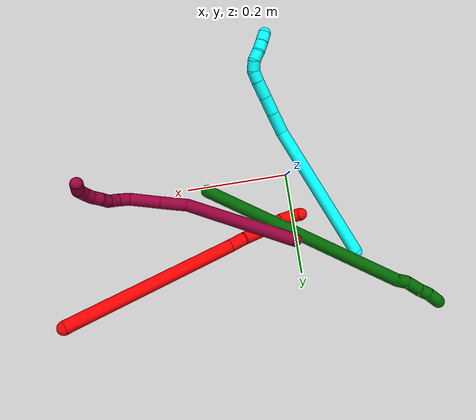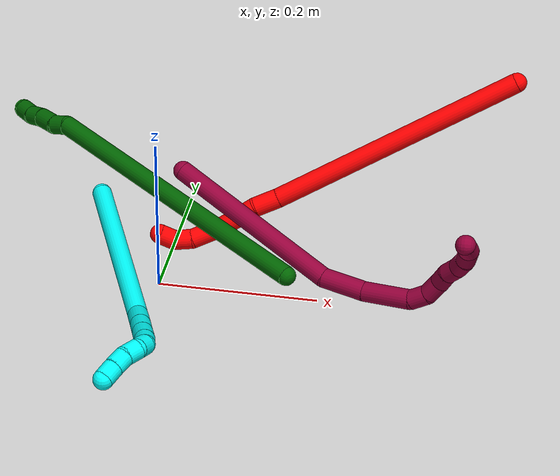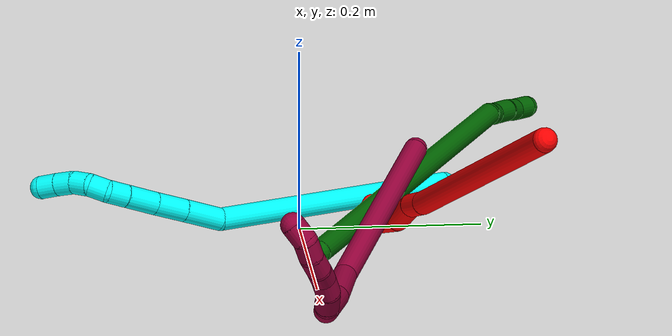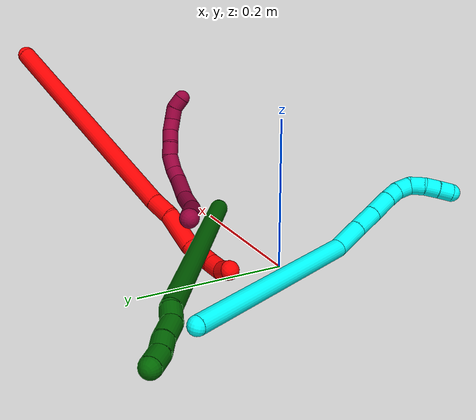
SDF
<sdf version="1.7">
 <world name="default">
  <model name="2">
   <static>0</static>
   <link name="2">
    <collision name="collision-cylinder-e_1_1_4">
     <pose>-0.010719 0.005513 -0.166262 -3.10844 -0.064348 2.19041</pose>
     <geometry><cylinder><radius>0.0125</radius><length>0.333398</length></cylinder></geometry>
     <surface>
      <friction><ode><mu>1.16</mu><mu2>1.16</mu2><slip1>0</slip1><slip2>0</slip2></ode></friction>
      <contact><ode><kp>1e+06</kp><kd>1</kd><max_vel>0</max_vel><min_depth>0.001</min_depth></ode></contact>
     </surface>
    </collision>
    <visual name="visual-cylinder-e_1_1_4">
     <pose>-0.010719 0.005513 -0.166262 -3.10844 -0.064348 2.19041</pose>
     <geometry><cylinder><radius>0.0125</radius><length>0.333398</length></cylinder></geometry>
     <material><ambient>1 0 0 1</ambient></material>
    </visual>
    <collision name="collision-cylinder-e_2_4_5">
     <pose>-0.023229 0.009965 -0.348168 3.07379 -0.11369 -2.06669</pose>
     <geometry><cylinder><radius>0.0125</radius><length>0.031563</length></cylinder></geometry>
     <surface>
      <friction><ode><mu>1.16</mu><mu2>1.16</mu2><slip1>0</slip1><slip2>0</slip2></ode></friction>
      <contact><ode><kp>1e+06</kp><kd>1</kd><max_vel>0</max_vel><min_depth>0.001</min_depth></ode></contact>
     </surface>
    </collision>
    <visual name="visual-cylinder-e_2_4_5">
     <pose>-0.023229 0.009965 -0.348168 3.07379 -0.11369 -2.06669</pose>
     <geometry><cylinder><radius>0.0125</radius><length>0.031563</length></cylinder></geometry>
     <material><ambient>1 0 0 1</ambient></material>
    </visual>
    <collision name="collision-cylinder-e_3_5_6">
     <pose>-0.025273 0.012934 -0.389458 -2.98567 -0.009772 0.124935</pose>
     <geometry><cylinder><radius>0.0125</radius><length>0.051925</length></cylinder></geometry>
     <surface>
      <friction><ode><mu>1.16</mu><mu2>1.16</mu2><slip1>0</slip1><slip2>0</slip2></ode></friction>
      <contact><ode><kp>1e+06</kp><kd>1</kd><max_vel>0</max_vel><min_depth>0.001</min_depth></ode></contact>
     </surface>
    </collision>
    <visual name="visual-cylinder-e_3_5_6">
     <pose>-0.025273 0.012934 -0.389458 -2.98567 -0.009772 0.124935</pose>
     <geometry><cylinder><radius>0.0125</radius><length>0.051925</length></cylinder></geometry>
     <material><ambient>1 0 0 1</ambient></material>
    </visual>
    <collision name="collision-cylinder-e_4_6_7">
     <pose>-0.027399 0.014507 -0.434867 3.01783 -0.093758 -1.29612</pose>
     <geometry><cylinder><radius>0.0125</radius><length>0.040006</length></cylinder></geometry>
     <surface>
      <friction><ode><mu>1.16</mu><mu2>1.16</mu2><slip1>0</slip1><slip2>0</slip2></ode></friction>
      <contact><ode><kp>1e+06</kp><kd>1</kd><max_vel>0</max_vel><min_depth>0.001</min_depth></ode></contact>
     </surface>
    </collision>
    <visual name="visual-cylinder-e_4_6_7">
     <pose>-0.027399 0.014507 -0.434867 3.01783 -0.093758 -1.29612</pose>
     <geometry><cylinder><radius>0.0125</radius><length>0.040006</length></cylinder></geometry>
     <material><ambient>1 0 0 1</ambient></material>
    </visual>
    <collision name="collision-cylinder-e_5_7_8">
     <pose>-0.033791 0.010378 -0.464928 2.98082 -0.408717 -2.40015</pose>
     <geometry><cylinder><radius>0.0125</radius><length>0.022738</length></cylinder></geometry>
     <surface>
      <friction><ode><mu>1.16</mu><mu2>1.16</mu2><slip1>0</slip1><slip2>0</slip2></ode></friction>
      <contact><ode><kp>1e+06</kp><kd>1</kd><max_vel>0</max_vel><min_depth>0.001</min_depth></ode></contact>
     </surface>
    </collision>
    <visual name="visual-cylinder-e_5_7_8">
     <pose>-0.033791 0.010378 -0.464928 2.98082 -0.408717 -2.40015</pose>
     <geometry><cylinder><radius>0.0125</radius><length>0.022738</length></cylinder></geometry>
     <material><ambient>1 0 0 1</ambient></material>
    </visual>
    <collision name="collision-cylinder-e_6_8_2">
     <pose>-0.045327 0.004452 -0.481257 2.527 -0.760113 -1.79894</pose>
     <geometry><cylinder><radius>0.0125</radius><length>0.02037</length></cylinder></geometry>
     <surface>
      <friction><ode><mu>1.16</mu><mu2>1.16</mu2><slip1>0</slip1><slip2>0</slip2></ode></friction>
      <contact><ode><kp>1e+06</kp><kd>1</kd><max_vel>0</max_vel><min_depth>0.001</min_depth></ode></contact>
     </surface>
    </collision>
    <visual name="visual-cylinder-e_6_8_2">
     <pose>-0.045327 0.004452 -0.481257 2.527 -0.760113 -1.79894</pose>
     <geometry><cylinder><radius>0.0125</radius><length>0.02037</length></cylinder></geometry>
     <material><ambient>1 0 0 1</ambient></material>
    </visual>
    <collision name="collision-sphere-2">
     <pose>-0.052344 0.000195 -0.487288 0 -0 0</pose>
     <geometry><sphere><radius>0.0125</radius></sphere></geometry>
     <surface>
      <friction><ode><mu>1.16</mu><mu2>1.16</mu2><slip1>0</slip1><slip2>0</slip2></ode></friction>
      <contact><ode><kp>1e+06</kp><kd>1</kd><max_vel>0</max_vel><min_depth>0.001</min_depth></ode></contact>
     </surface>
    </collision>
    <visual name="visual-sphere-2">
     <pose>-0.052344 0.000195 -0.487288 0 -0 0</pose>
     <geometry><sphere><radius>0.0125</radius></sphere></geometry>
     <material><ambient>1 0 0 1</ambient></material>
    </visual>
    <collision name="collision-sphere-4">
     <pose>-0.021439 0.011027 -0.332525 0 -0 0</pose>
     <geometry><sphere><radius>0.0125</radius></sphere></geometry>
     <surface>
      <friction><ode><mu>1.16</mu><mu2>1.16</mu2><slip1>0</slip1><slip2>0</slip2></ode></friction>
      <contact><ode><kp>1e+06</kp><kd>1</kd><max_vel>0</max_vel><min_depth>0.001</min_depth></ode></contact>
     </surface>
    </collision>
    <visual name="visual-sphere-4">
     <pose>-0.021439 0.011027 -0.332525 0 -0 0</pose>
     <geometry><sphere><radius>0.0125</radius></sphere></geometry>
     <material><ambient>1 0 0 1</ambient></material>
    </visual>
    <collision name="collision-sphere-1">
     <geometry><sphere><radius>0.0125</radius></sphere></geometry>
     <surface>
      <friction><ode><mu>1.16</mu><mu2>1.16</mu2><slip1>0</slip1><slip2>0</slip2></ode></friction>
      <contact><ode><kp>1e+06</kp><kd>1</kd><max_vel>0</max_vel><min_depth>0.001</min_depth></ode></contact>
     </surface>
    </collision>
    <visual name="visual-sphere-1">
     <geometry><sphere><radius>0.0125</radius></sphere></geometry>
     <material><ambient>1 0 0 1</ambient></material>
    </visual>
    <collision name="collision-sphere-8">
     <pose>-0.038309 0.008708 -0.475227 0 -0 0</pose>
     <geometry><sphere><radius>0.0125</radius></sphere></geometry>
     <surface>
      <friction><ode><mu>1.16</mu><mu2>1.16</mu2><slip1>0</slip1><slip2>0</slip2></ode></friction>
      <contact><ode><kp>1e+06</kp><kd>1</kd><max_vel>0</max_vel><min_depth>0.001</min_depth></ode></contact>
     </surface>
    </collision>
    <visual name="visual-sphere-8">
     <pose>-0.038309 0.008708 -0.475227 0 -0 0</pose>
     <geometry><sphere><radius>0.0125</radius></sphere></geometry>
     <material><ambient>1 0 0 1</ambient></material>
    </visual>
    <collision name="collision-sphere-5">
     <pose>-0.025019 0.008902 -0.363812 0 -0 0</pose>
     <geometry><sphere><radius>0.0125</radius></sphere></geometry>
     <surface>
      <friction><ode><mu>1.16</mu><mu2>1.16</mu2><slip1>0</slip1><slip2>0</slip2></ode></friction>
      <contact><ode><kp>1e+06</kp><kd>1</kd><max_vel>0</max_vel><min_depth>0.001</min_depth></ode></contact>
     </surface>
    </collision>
    <visual name="visual-sphere-5">
     <pose>-0.025019 0.008902 -0.363812 0 -0 0</pose>
     <geometry><sphere><radius>0.0125</radius></sphere></geometry>
     <material><ambient>1 0 0 1</ambient></material>
    </visual>
    <collision name="collision-sphere-6">
     <pose>-0.025527 0.016965 -0.415104 0 -0 0</pose>
     <geometry><sphere><radius>0.0125</radius></sphere></geometry>
     <surface>
      <friction><ode><mu>1.16</mu><mu2>1.16</mu2><slip1>0</slip1><slip2>0</slip2></ode></friction>
      <contact><ode><kp>1e+06</kp><kd>1</kd><max_vel>0</max_vel><min_depth>0.001</min_depth></ode></contact>
     </surface>
    </collision>
    <visual name="visual-sphere-6">
     <pose>-0.025527 0.016965 -0.415104 0 -0 0</pose>
     <geometry><sphere><radius>0.0125</radius></sphere></geometry>
     <material><ambient>1 0 0 1</ambient></material>
    </visual>
    <collision name="collision-sphere-7">
     <pose>-0.029272 0.012048 -0.45463 0 -0 0</pose>
     <geometry><sphere><radius>0.0125</radius></sphere></geometry>
     <surface>
      <friction><ode><mu>1.16</mu><mu2>1.16</mu2><slip1>0</slip1><slip2>0</slip2></ode></friction>
      <contact><ode><kp>1e+06</kp><kd>1</kd><max_vel>0</max_vel><min_depth>0.001</min_depth></ode></contact>
     </surface>
    </collision>
    <visual name="visual-sphere-7">
     <pose>-0.029272 0.012048 -0.45463 0 -0 0</pose>
     <geometry><sphere><radius>0.0125</radius></sphere></geometry>
     <material><ambient>1 0 0 1</ambient></material>
    </visual>
    <inertial>
     <pose>-0.016814 0.007463 -0.248831 0 -0 0</pose>
     <mass>0.5</mass>
     <inertia><ixx>0.00072</ixx><ixy>0</ixy><ixz>0</ixz><iyy>0.004303</iyy><iyz>0</iyz><izz>6.2e-05</izz></inertia>
    </inertial>
   </link>
   <pose>0.414965 0.198597 0.221125 -0.946595 0.619431 -0.823257</pose>
  </model>
  <model name="3">
   <static>0</static>
   <link name="3">
    <collision name="collision-cylinder-e_1_1_4">
     <pose>-0.033392 -0.132404 -0.034888 1.82843 -0.239206 -0.309397</pose>
     <geometry><cylinder><radius>0.0125</radius><length>0.281873</length></cylinder></geometry>
     <surface>
      <friction><ode><mu>1.16</mu><mu2>1.16</mu2><slip1>0</slip1><slip2>0</slip2></ode></friction>
      <contact><ode><kp>1e+06</kp><kd>1</kd><max_vel>0</max_vel><min_depth>0.001</min_depth></ode></contact>
     </surface>
    </collision>
    <visual name="visual-cylinder-e_1_1_4">
     <pose>-0.033392 -0.132404 -0.034888 1.82843 -0.239206 -0.309397</pose>
     <geometry><cylinder><radius>0.0125</radius><length>0.281873</length></cylinder></geometry>
     <material><ambient>0.003922 1 0.996078 1</ambient></material>
    </visual>
    <collision name="collision-cylinder-e_2_4_5">
     <pose>-0.07025 -0.282733 -0.082546 2.18987 -0.156198 -0.301397</pose>
     <geometry><cylinder><radius>0.0125</radius><length>0.044558</length></cylinder></geometry>
     <surface>
      <friction><ode><mu>1.16</mu><mu2>1.16</mu2><slip1>0</slip1><slip2>0</slip2></ode></friction>
      <contact><ode><kp>1e+06</kp><kd>1</kd><max_vel>0</max_vel><min_depth>0.001</min_depth></ode></contact>
     </surface>
    </collision>
    <visual name="visual-cylinder-e_2_4_5">
     <pose>-0.07025 -0.282733 -0.082546 2.18987 -0.156198 -0.301397</pose>
     <geometry><cylinder><radius>0.0125</radius><length>0.044558</length></cylinder></geometry>
     <material><ambient>0.003922 1 0.996078 1</ambient></material>
    </visual>
    <collision name="collision-cylinder-e_3_5_6">
     <pose>-0.07642 -0.315181 -0.10546 2.18041 -0.15146 -0.289036</pose>
     <geometry><cylinder><radius>0.0125</radius><length>0.035842</length></cylinder></geometry>
     <surface>
      <friction><ode><mu>1.16</mu><mu2>1.16</mu2><slip1>0</slip1><slip2>0</slip2></ode></friction>
      <contact><ode><kp>1e+06</kp><kd>1</kd><max_vel>0</max_vel><min_depth>0.001</min_depth></ode></contact>
     </surface>
    </collision>
    <visual name="visual-cylinder-e_3_5_6">
     <pose>-0.07642 -0.315181 -0.10546 2.18041 -0.15146 -0.289036</pose>
     <geometry><cylinder><radius>0.0125</radius><length>0.035842</length></cylinder></geometry>
     <material><ambient>0.003922 1 0.996078 1</ambient></material>
    </visual>
    <collision name="collision-cylinder-e_4_6_7">
     <pose>-0.08184 -0.34375 -0.125818 2.19962 -0.155106 -0.302876</pose>
     <geometry><cylinder><radius>0.0125</radius><length>0.035156</length></cylinder></geometry>
     <surface>
      <friction><ode><mu>1.16</mu><mu2>1.16</mu2><slip1>0</slip1><slip2>0</slip2></ode></friction>
      <contact><ode><kp>1e+06</kp><kd>1</kd><max_vel>0</max_vel><min_depth>0.001</min_depth></ode></contact>
     </surface>
    </collision>
    <visual name="visual-cylinder-e_4_6_7">
     <pose>-0.08184 -0.34375 -0.125818 2.19962 -0.155106 -0.302876</pose>
     <geometry><cylinder><radius>0.0125</radius><length>0.035156</length></cylinder></geometry>
     <material><ambient>0.003922 1 0.996078 1</ambient></material>
    </visual>
    <collision name="collision-cylinder-e_5_7_8">
     <pose>-0.085584 -0.366861 -0.142355 2.17975 -0.092849 -0.177605</pose>
     <geometry><cylinder><radius>0.0125</radius><length>0.0222</length></cylinder></geometry>
     <surface>
      <friction><ode><mu>1.16</mu><mu2>1.16</mu2><slip1>0</slip1><slip2>0</slip2></ode></friction>
      <contact><ode><kp>1e+06</kp><kd>1</kd><max_vel>0</max_vel><min_depth>0.001</min_depth></ode></contact>
     </surface>
    </collision>
    <visual name="visual-cylinder-e_5_7_8">
     <pose>-0.085584 -0.366861 -0.142355 2.17975 -0.092849 -0.177605</pose>
     <geometry><cylinder><radius>0.0125</radius><length>0.0222</length></cylinder></geometry>
     <material><ambient>0.003922 1 0.996078 1</ambient></material>
    </visual>
    <collision name="collision-cylinder-e_6_8_9">
     <pose>-0.083007 -0.383644 -0.154018 2.17617 0.366903 0.680534</pose>
     <geometry><cylinder><radius>0.0125</radius><length>0.020108</length></cylinder></geometry>
     <surface>
      <friction><ode><mu>1.16</mu><mu2>1.16</mu2><slip1>0</slip1><slip2>0</slip2></ode></friction>
      <contact><ode><kp>1e+06</kp><kd>1</kd><max_vel>0</max_vel><min_depth>0.001</min_depth></ode></contact>
     </surface>
    </collision>
    <visual name="visual-cylinder-e_6_8_9">
     <pose>-0.083007 -0.383644 -0.154018 2.17617 0.366903 0.680534</pose>
     <geometry><cylinder><radius>0.0125</radius><length>0.020108</length></cylinder></geometry>
     <material><ambient>0.003922 1 0.996078 1</ambient></material>
    </visual>
    <collision name="collision-cylinder-e_7_9_10">
     <pose>-0.07247 -0.398434 -0.161305 1.83931 0.756946 0.961929</pose>
     <geometry><cylinder><radius>0.0125</radius><length>0.020184</length></cylinder></geometry>
     <surface>
      <friction><ode><mu>1.16</mu><mu2>1.16</mu2><slip1>0</slip1><slip2>0</slip2></ode></friction>
      <contact><ode><kp>1e+06</kp><kd>1</kd><max_vel>0</max_vel><min_depth>0.001</min_depth></ode></contact>
     </surface>
    </collision>
    <visual name="visual-cylinder-e_7_9_10">
     <pose>-0.07247 -0.398434 -0.161305 1.83931 0.756946 0.961929</pose>
     <geometry><cylinder><radius>0.0125</radius><length>0.020184</length></cylinder></geometry>
     <material><ambient>0.003922 1 0.996078 1</ambient></material>
    </visual>
    <collision name="collision-cylinder-e_8_10_11">
     <pose>-0.059796 -0.413699 -0.163163 1.56005 0.611522 0.605382</pose>
     <geometry><cylinder><radius>0.0125</radius><length>0.020009</length></cylinder></geometry>
     <surface>
      <friction><ode><mu>1.16</mu><mu2>1.16</mu2><slip1>0</slip1><slip2>0</slip2></ode></friction>
      <contact><ode><kp>1e+06</kp><kd>1</kd><max_vel>0</max_vel><min_depth>0.001</min_depth></ode></contact>
     </surface>
    </collision>
    <visual name="visual-cylinder-e_8_10_11">
     <pose>-0.059796 -0.413699 -0.163163 1.56005 0.611522 0.605382</pose>
     <geometry><cylinder><radius>0.0125</radius><length>0.020009</length></cylinder></geometry>
     <material><ambient>0.003922 1 0.996078 1</ambient></material>
    </visual>
    <collision name="collision-cylinder-e_9_11_2">
     <pose>-0.048633 -0.430326 -0.162681 1.52411 0.570515 0.545781</pose>
     <geometry><cylinder><radius>0.0125</radius><length>0.020069</length></cylinder></geometry>
     <surface>
      <friction><ode><mu>1.16</mu><mu2>1.16</mu2><slip1>0</slip1><slip2>0</slip2></ode></friction>
      <contact><ode><kp>1e+06</kp><kd>1</kd><max_vel>0</max_vel><min_depth>0.001</min_depth></ode></contact>
     </surface>
    </collision>
    <visual name="visual-cylinder-e_9_11_2">
     <pose>-0.048633 -0.430326 -0.162681 1.52411 0.570515 0.545781</pose>
     <geometry><cylinder><radius>0.0125</radius><length>0.020069</length></cylinder></geometry>
     <material><ambient>0.003922 1 0.996078 1</ambient></material>
    </visual>
    <collision name="collision-sphere-2">
     <pose>-0.043214 -0.438762 -0.162287 0 -0 0</pose>
     <geometry><sphere><radius>0.0125</radius></sphere></geometry>
     <surface>
      <friction><ode><mu>1.16</mu><mu2>1.16</mu2><slip1>0</slip1><slip2>0</slip2></ode></friction>
      <contact><ode><kp>1e+06</kp><kd>1</kd><max_vel>0</max_vel><min_depth>0.001</min_depth></ode></contact>
     </surface>
    </collision>
    <visual name="visual-sphere-2">
     <pose>-0.043214 -0.438762 -0.162287 0 -0 0</pose>
     <geometry><sphere><radius>0.0125</radius></sphere></geometry>
     <material><ambient>0.003922 1 0.996078 1</ambient></material>
    </visual>
    <collision name="collision-sphere-11">
     <pose>-0.054052 -0.42189 -0.163075 0 -0 0</pose>
     <geometry><sphere><radius>0.0125</radius></sphere></geometry>
     <surface>
      <friction><ode><mu>1.16</mu><mu2>1.16</mu2><slip1>0</slip1><slip2>0</slip2></ode></friction>
      <contact><ode><kp>1e+06</kp><kd>1</kd><max_vel>0</max_vel><min_depth>0.001</min_depth></ode></contact>
     </surface>
    </collision>
    <visual name="visual-sphere-11">
     <pose>-0.054052 -0.42189 -0.163075 0 -0 0</pose>
     <geometry><sphere><radius>0.0125</radius></sphere></geometry>
     <material><ambient>0.003922 1 0.996078 1</ambient></material>
    </visual>
    <collision name="collision-sphere-10">
     <pose>-0.06554 -0.405508 -0.163251 0 -0 0</pose>
     <geometry><sphere><radius>0.0125</radius></sphere></geometry>
     <surface>
      <friction><ode><mu>1.16</mu><mu2>1.16</mu2><slip1>0</slip1><slip2>0</slip2></ode></friction>
      <contact><ode><kp>1e+06</kp><kd>1</kd><max_vel>0</max_vel><min_depth>0.001</min_depth></ode></contact>
     </surface>
    </collision>
    <visual name="visual-sphere-10">
     <pose>-0.06554 -0.405508 -0.163251 0 -0 0</pose>
     <geometry><sphere><radius>0.0125</radius></sphere></geometry>
     <material><ambient>0.003922 1 0.996078 1</ambient></material>
    </visual>
    <collision name="collision-sphere-9">
     <pose>-0.0794 -0.391361 -0.159359 0 -0 0</pose>
     <geometry><sphere><radius>0.0125</radius></sphere></geometry>
     <surface>
      <friction><ode><mu>1.16</mu><mu2>1.16</mu2><slip1>0</slip1><slip2>0</slip2></ode></friction>
      <contact><ode><kp>1e+06</kp><kd>1</kd><max_vel>0</max_vel><min_depth>0.001</min_depth></ode></contact>
     </surface>
    </collision>
    <visual name="visual-sphere-9">
     <pose>-0.0794 -0.391361 -0.159359 0 -0 0</pose>
     <geometry><sphere><radius>0.0125</radius></sphere></geometry>
     <material><ambient>0.003922 1 0.996078 1</ambient></material>
    </visual>
    <collision name="collision-sphere-4">
     <pose>-0.066785 -0.264809 -0.069775 0 -0 0</pose>
     <geometry><sphere><radius>0.0125</radius></sphere></geometry>
     <surface>
      <friction><ode><mu>1.16</mu><mu2>1.16</mu2><slip1>0</slip1><slip2>0</slip2></ode></friction>
      <contact><ode><kp>1e+06</kp><kd>1</kd><max_vel>0</max_vel><min_depth>0.001</min_depth></ode></contact>
     </surface>
    </collision>
    <visual name="visual-sphere-4">
     <pose>-0.066785 -0.264809 -0.069775 0 -0 0</pose>
     <geometry><sphere><radius>0.0125</radius></sphere></geometry>
     <material><ambient>0.003922 1 0.996078 1</ambient></material>
    </visual>
    <collision name="collision-sphere-1">
     <geometry><sphere><radius>0.0125</radius></sphere></geometry>
     <surface>
      <friction><ode><mu>1.16</mu><mu2>1.16</mu2><slip1>0</slip1><slip2>0</slip2></ode></friction>
      <contact><ode><kp>1e+06</kp><kd>1</kd><max_vel>0</max_vel><min_depth>0.001</min_depth></ode></contact>
     </surface>
    </collision>
    <visual name="visual-sphere-1">
     <geometry><sphere><radius>0.0125</radius></sphere></geometry>
     <material><ambient>0.003922 1 0.996078 1</ambient></material>
    </visual>
    <collision name="collision-sphere-8">
     <pose>-0.086614 -0.375927 -0.148677 0 -0 0</pose>
     <geometry><sphere><radius>0.0125</radius></sphere></geometry>
     <surface>
      <friction><ode><mu>1.16</mu><mu2>1.16</mu2><slip1>0</slip1><slip2>0</slip2></ode></friction>
      <contact><ode><kp>1e+06</kp><kd>1</kd><max_vel>0</max_vel><min_depth>0.001</min_depth></ode></contact>
     </surface>
    </collision>
    <visual name="visual-sphere-8">
     <pose>-0.086614 -0.375927 -0.148677 0 -0 0</pose>
     <geometry><sphere><radius>0.0125</radius></sphere></geometry>
     <material><ambient>0.003922 1 0.996078 1</ambient></material>
    </visual>
    <collision name="collision-sphere-5">
     <pose>-0.073716 -0.300656 -0.095317 0 -0 0</pose>
     <geometry><sphere><radius>0.0125</radius></sphere></geometry>
     <surface>
      <friction><ode><mu>1.16</mu><mu2>1.16</mu2><slip1>0</slip1><slip2>0</slip2></ode></friction>
      <contact><ode><kp>1e+06</kp><kd>1</kd><max_vel>0</max_vel><min_depth>0.001</min_depth></ode></contact>
     </surface>
    </collision>
    <visual name="visual-sphere-5">
     <pose>-0.073716 -0.300656 -0.095317 0 -0 0</pose>
     <geometry><sphere><radius>0.0125</radius></sphere></geometry>
     <material><ambient>0.003922 1 0.996078 1</ambient></material>
    </visual>
    <collision name="collision-sphere-6">
     <pose>-0.079124 -0.329706 -0.115603 0 -0 0</pose>
     <geometry><sphere><radius>0.0125</radius></sphere></geometry>
     <surface>
      <friction><ode><mu>1.16</mu><mu2>1.16</mu2><slip1>0</slip1><slip2>0</slip2></ode></friction>
      <contact><ode><kp>1e+06</kp><kd>1</kd><max_vel>0</max_vel><min_depth>0.001</min_depth></ode></contact>
     </surface>
    </collision>
    <visual name="visual-sphere-6">
     <pose>-0.079124 -0.329706 -0.115603 0 -0 0</pose>
     <geometry><sphere><radius>0.0125</radius></sphere></geometry>
     <material><ambient>0.003922 1 0.996078 1</ambient></material>
    </visual>
    <collision name="collision-sphere-7">
     <pose>-0.084555 -0.357795 -0.136033 0 -0 0</pose>
     <geometry><sphere><radius>0.0125</radius></sphere></geometry>
     <surface>
      <friction><ode><mu>1.16</mu><mu2>1.16</mu2><slip1>0</slip1><slip2>0</slip2></ode></friction>
      <contact><ode><kp>1e+06</kp><kd>1</kd><max_vel>0</max_vel><min_depth>0.001</min_depth></ode></contact>
     </surface>
    </collision>
    <visual name="visual-sphere-7">
     <pose>-0.084555 -0.357795 -0.136033 0 -0 0</pose>
     <geometry><sphere><radius>0.0125</radius></sphere></geometry>
     <material><ambient>0.003922 1 0.996078 1</ambient></material>
    </visual>
    <inertial>
     <pose>-0.050726 -0.228231 -0.075516 0 -0 0</pose>
     <mass>0.5</mass>
     <inertia>
      <ixx>0.001199</ixx>
      <ixy>0</ixy>
      <ixz>0</ixz>
      <iyy>-0.000927</iyy>
      <iyz>0</iyz>
      <izz>0.002217</izz>
     </inertia>
    </inertial>
   </link>
   <pose>-0.114121 0.174634 0.011499 2.87841 0.022652 -2.9892</pose>
  </model>
  <model name="6">
   <static>0</static>
   <link name="6">
    <collision name="collision-cylinder-e_1_1_4">
     <pose>-0.062108 -0.021092 0.191819 0.10952 -0.311376 -0.017207</pose>
     <geometry><cylinder><radius>0.0125</radius><length>0.405446</length></cylinder></geometry>
     <surface>
      <friction><ode><mu>1.16</mu><mu2>1.16</mu2><slip1>0</slip1><slip2>0</slip2></ode></friction>
      <contact><ode><kp>1e+06</kp><kd>1</kd><max_vel>0</max_vel><min_depth>0.001</min_depth></ode></contact>
     </surface>
    </collision>
    <visual name="visual-cylinder-e_1_1_4">
     <pose>-0.062108 -0.021092 0.191819 0.10952 -0.311376 -0.017207</pose>
     <geometry><cylinder><radius>0.0125</radius><length>0.405446</length></cylinder></geometry>
     <material><ambient>0 0.392157 0.003922 1</ambient></material>
    </visual>
    <collision name="collision-cylinder-e_2_4_5">
     <pose>-0.12945 -0.039248 0.392477 -0.320757 -0.511974 0.084628</pose>
     <geometry><cylinder><radius>0.0125</radius><length>0.021369</length></cylinder></geometry>
     <surface>
      <friction><ode><mu>1.16</mu><mu2>1.16</mu2><slip1>0</slip1><slip2>0</slip2></ode></friction>
      <contact><ode><kp>1e+06</kp><kd>1</kd><max_vel>0</max_vel><min_depth>0.001</min_depth></ode></contact>
     </surface>
    </collision>
    <visual name="visual-cylinder-e_2_4_5">
     <pose>-0.12945 -0.039248 0.392477 -0.320757 -0.511974 0.084628</pose>
     <geometry><cylinder><radius>0.0125</radius><length>0.021369</length></cylinder></geometry>
     <material><ambient>0 0.392157 0.003922 1</ambient></material>
    </visual>
    <collision name="collision-cylinder-e_3_5_6">
     <pose>-0.137577 -0.034833 0.415451 -0.104218 -0.200781 0.010507</pose>
     <geometry><cylinder><radius>0.0125</radius><length>0.029008</length></cylinder></geometry>
     <surface>
      <friction><ode><mu>1.16</mu><mu2>1.16</mu2><slip1>0</slip1><slip2>0</slip2></ode></friction>
      <contact><ode><kp>1e+06</kp><kd>1</kd><max_vel>0</max_vel><min_depth>0.001</min_depth></ode></contact>
     </surface>
    </collision>
    <visual name="visual-cylinder-e_3_5_6">
     <pose>-0.137577 -0.034833 0.415451 -0.104218 -0.200781 0.010507</pose>
     <geometry><cylinder><radius>0.0125</radius><length>0.029008</length></cylinder></geometry>
     <material><ambient>0 0.392157 0.003922 1</ambient></material>
    </visual>
    <collision name="collision-cylinder-e_4_6_7">
     <pose>-0.143741 -0.031018 0.439161 -0.239345 -0.320524 0.038871</pose>
     <geometry><cylinder><radius>0.0125</radius><length>0.020769</length></cylinder></geometry>
     <surface>
      <friction><ode><mu>1.16</mu><mu2>1.16</mu2><slip1>0</slip1><slip2>0</slip2></ode></friction>
      <contact><ode><kp>1e+06</kp><kd>1</kd><max_vel>0</max_vel><min_depth>0.001</min_depth></ode></contact>
     </surface>
    </collision>
    <visual name="visual-cylinder-e_4_6_7">
     <pose>-0.143741 -0.031018 0.439161 -0.239345 -0.320524 0.038871</pose>
     <geometry><cylinder><radius>0.0125</radius><length>0.020769</length></cylinder></geometry>
     <material><ambient>0 0.392157 0.003922 1</ambient></material>
    </visual>
    <collision name="collision-cylinder-e_5_7_2">
     <pose>-0.14823 -0.027658 0.460332 -0.088016 -0.104163 0.004591</pose>
     <geometry><cylinder><radius>0.0125</radius><length>0.023409</length></cylinder></geometry>
     <surface>
      <friction><ode><mu>1.16</mu><mu2>1.16</mu2><slip1>0</slip1><slip2>0</slip2></ode></friction>
      <contact><ode><kp>1e+06</kp><kd>1</kd><max_vel>0</max_vel><min_depth>0.001</min_depth></ode></contact>
     </surface>
    </collision>
    <visual name="visual-cylinder-e_5_7_2">
     <pose>-0.14823 -0.027658 0.460332 -0.088016 -0.104163 0.004591</pose>
     <geometry><cylinder><radius>0.0125</radius><length>0.023409</length></cylinder></geometry>
     <material><ambient>0 0.392157 0.003922 1</ambient></material>
    </visual>
    <collision name="collision-sphere-2">
     <pose>-0.149447 -0.026635 0.471927 0 -0 0</pose>
     <geometry><sphere><radius>0.0125</radius></sphere></geometry>
     <surface>
      <friction><ode><mu>1.16</mu><mu2>1.16</mu2><slip1>0</slip1><slip2>0</slip2></ode></friction>
      <contact><ode><kp>1e+06</kp><kd>1</kd><max_vel>0</max_vel><min_depth>0.001</min_depth></ode></contact>
     </surface>
    </collision>
    <visual name="visual-sphere-2">
     <pose>-0.149447 -0.026635 0.471927 0 -0 0</pose>
     <geometry><sphere><radius>0.0125</radius></sphere></geometry>
     <material><ambient>0 0.392157 0.003922 1</ambient></material>
    </visual>
    <collision name="collision-sphere-7">
     <pose>-0.147013 -0.028681 0.448736 0 -0 0</pose>
     <geometry><sphere><radius>0.0125</radius></sphere></geometry>
     <surface>
      <friction><ode><mu>1.16</mu><mu2>1.16</mu2><slip1>0</slip1><slip2>0</slip2></ode></friction>
      <contact><ode><kp>1e+06</kp><kd>1</kd><max_vel>0</max_vel><min_depth>0.001</min_depth></ode></contact>
     </surface>
    </collision>
    <visual name="visual-sphere-7">
     <pose>-0.147013 -0.028681 0.448736 0 -0 0</pose>
     <geometry><sphere><radius>0.0125</radius></sphere></geometry>
     <material><ambient>0 0.392157 0.003922 1</ambient></material>
    </visual>
    <collision name="collision-sphere-6">
     <pose>-0.14047 -0.033354 0.429587 0 -0 0</pose>
     <geometry><sphere><radius>0.0125</radius></sphere></geometry>
     <surface>
      <friction><ode><mu>1.16</mu><mu2>1.16</mu2><slip1>0</slip1><slip2>0</slip2></ode></friction>
      <contact><ode><kp>1e+06</kp><kd>1</kd><max_vel>0</max_vel><min_depth>0.001</min_depth></ode></contact>
     </surface>
    </collision>
    <visual name="visual-sphere-6">
     <pose>-0.14047 -0.033354 0.429587 0 -0 0</pose>
     <geometry><sphere><radius>0.0125</radius></sphere></geometry>
     <material><ambient>0 0.392157 0.003922 1</ambient></material>
    </visual>
    <collision name="collision-sphere-5">
     <pose>-0.134685 -0.036311 0.401316 0 -0 0</pose>
     <geometry><sphere><radius>0.0125</radius></sphere></geometry>
     <surface>
      <friction><ode><mu>1.16</mu><mu2>1.16</mu2><slip1>0</slip1><slip2>0</slip2></ode></friction>
      <contact><ode><kp>1e+06</kp><kd>1</kd><max_vel>0</max_vel><min_depth>0.001</min_depth></ode></contact>
     </surface>
    </collision>
    <visual name="visual-sphere-5">
     <pose>-0.134685 -0.036311 0.401316 0 -0 0</pose>
     <geometry><sphere><radius>0.0125</radius></sphere></geometry>
     <material><ambient>0 0.392157 0.003922 1</ambient></material>
    </visual>
    <collision name="collision-sphere-1">
     <geometry><sphere><radius>0.0125</radius></sphere></geometry>
     <surface>
      <friction><ode><mu>1.16</mu><mu2>1.16</mu2><slip1>0</slip1><slip2>0</slip2></ode></friction>
      <contact><ode><kp>1e+06</kp><kd>1</kd><max_vel>0</max_vel><min_depth>0.001</min_depth></ode></contact>
     </surface>
    </collision>
    <visual name="visual-sphere-1">
     <geometry><sphere><radius>0.0125</radius></sphere></geometry>
     <material><ambient>0 0.392157 0.003922 1</ambient></material>
    </visual>
    <collision name="collision-sphere-4">
     <pose>-0.124216 -0.042185 0.383637 0 -0 0</pose>
     <geometry><sphere><radius>0.0125</radius></sphere></geometry>
     <surface>
      <friction><ode><mu>1.16</mu><mu2>1.16</mu2><slip1>0</slip1><slip2>0</slip2></ode></friction>
      <contact><ode><kp>1e+06</kp><kd>1</kd><max_vel>0</max_vel><min_depth>0.001</min_depth></ode></contact>
     </surface>
    </collision>
    <visual name="visual-sphere-4">
     <pose>-0.124216 -0.042185 0.383637 0 -0 0</pose>
     <geometry><sphere><radius>0.0125</radius></sphere></geometry>
     <material><ambient>0 0.392157 0.003922 1</ambient></material>
    </visual>
    <inertial>
     <pose>-0.076787 -0.023385 0.236213 0 -0 0</pose>
     <mass>0.5</mass>
     <inertia>
      <ixx>0.005207</ixx>
      <ixy>0</ixy>
      <ixz>0</ixz>
      <iyy>0.005454</iyy>
      <iyz>0</iyz>
      <izz>0.002324</izz>
     </inertia>
    </inertial>
   </link>
   <pose>0.15987 0.007136 0.027903 -1.5534 -0.023509 0.658712</pose>
  </model>
  <model name="8">
   <static>0</static>
   <link name="8">
    <collision name="collision-cylinder-e_1_1_4">
     <pose>0.060301 -0.013759 0.098434 0.138879 0.545333 0.038893</pose>
     <geometry><cylinder><radius>0.0125</radius><length>0.232506</length></cylinder></geometry>
     <surface>
      <friction><ode><mu>1.16</mu><mu2>1.16</mu2><slip1>0</slip1><slip2>0</slip2></ode></friction>
      <contact><ode><kp>1e+06</kp><kd>1</kd><max_vel>0</max_vel><min_depth>0.001</min_depth></ode></contact>
     </surface>
    </collision>
    <visual name="visual-cylinder-e_1_1_4">
     <pose>0.060301 -0.013759 0.098434 0.138879 0.545333 0.038893</pose>
     <geometry><cylinder><radius>0.0125</radius><length>0.232506</length></cylinder></geometry>
     <material><ambient>0.584314 0 0.227451 1</ambient></material>
    </visual>
    <collision name="collision-cylinder-e_2_4_5">
     <pose>0.127034 -0.031045 0.223502 0.131651 0.23501 0.015563</pose>
     <geometry><cylinder><radius>0.0125</radius><length>0.055251</length></cylinder></geometry>
     <surface>
      <friction><ode><mu>1.16</mu><mu2>1.16</mu2><slip1>0</slip1><slip2>0</slip2></ode></friction>
      <contact><ode><kp>1e+06</kp><kd>1</kd><max_vel>0</max_vel><min_depth>0.001</min_depth></ode></contact>
     </surface>
    </collision>
    <visual name="visual-cylinder-e_2_4_5">
     <pose>0.127034 -0.031045 0.223502 0.131651 0.23501 0.015563</pose>
     <geometry><cylinder><radius>0.0125</radius><length>0.055251</length></cylinder></geometry>
     <material><ambient>0.584314 0 0.227451 1</ambient></material>
    </visual>
    <collision name="collision-cylinder-e_3_5_6">
     <pose>0.136431 -0.042536 0.280255 0.258519 0.094858 0.012339</pose>
     <geometry><cylinder><radius>0.0125</radius><length>0.06259</length></cylinder></geometry>
     <surface>
      <friction><ode><mu>1.16</mu><mu2>1.16</mu2><slip1>0</slip1><slip2>0</slip2></ode></friction>
      <contact><ode><kp>1e+06</kp><kd>1</kd><max_vel>0</max_vel><min_depth>0.001</min_depth></ode></contact>
     </surface>
    </collision>
    <visual name="visual-cylinder-e_3_5_6">
     <pose>0.136431 -0.042536 0.280255 0.258519 0.094858 0.012339</pose>
     <geometry><cylinder><radius>0.0125</radius><length>0.06259</length></cylinder></geometry>
     <material><ambient>0.584314 0 0.227451 1</ambient></material>
    </visual>
    <collision name="collision-cylinder-e_4_6_7">
     <pose>0.135365 -0.054356 0.320952 0.349466 -0.343724 -0.061264</pose>
     <geometry><cylinder><radius>0.0125</radius><length>0.023917</length></cylinder></geometry>
     <surface>
      <friction><ode><mu>1.16</mu><mu2>1.16</mu2><slip1>0</slip1><slip2>0</slip2></ode></friction>
      <contact><ode><kp>1e+06</kp><kd>1</kd><max_vel>0</max_vel><min_depth>0.001</min_depth></ode></contact>
     </surface>
    </collision>
    <visual name="visual-cylinder-e_4_6_7">
     <pose>0.135365 -0.054356 0.320952 0.349466 -0.343724 -0.061264</pose>
     <geometry><cylinder><radius>0.0125</radius><length>0.023917</length></cylinder></geometry>
     <material><ambient>0.584314 0 0.227451 1</ambient></material>
    </visual>
    <collision name="collision-cylinder-e_5_7_8">
     <pose>0.123802 -0.064088 0.33879 0.680532 -0.678699 -0.248664</pose>
     <geometry><cylinder><radius>0.0125</radius><length>0.023999</length></cylinder></geometry>
     <surface>
      <friction><ode><mu>1.16</mu><mu2>1.16</mu2><slip1>0</slip1><slip2>0</slip2></ode></friction>
      <contact><ode><kp>1e+06</kp><kd>1</kd><max_vel>0</max_vel><min_depth>0.001</min_depth></ode></contact>
     </surface>
    </collision>
    <visual name="visual-cylinder-e_5_7_8">
     <pose>0.123802 -0.064088 0.33879 0.680532 -0.678699 -0.248664</pose>
     <geometry><cylinder><radius>0.0125</radius><length>0.023999</length></cylinder></geometry>
     <material><ambient>0.584314 0 0.227451 1</ambient></material>
    </visual>
    <collision name="collision-cylinder-e_6_8_9">
     <pose>0.11102 -0.077642 0.350981 0.99985 -0.522088 -0.289781</pose>
     <geometry><cylinder><radius>0.0125</radius><length>0.021053</length></cylinder></geometry>
     <surface>
      <friction><ode><mu>1.16</mu><mu2>1.16</mu2><slip1>0</slip1><slip2>0</slip2></ode></friction>
      <contact><ode><kp>1e+06</kp><kd>1</kd><max_vel>0</max_vel><min_depth>0.001</min_depth></ode></contact>
     </surface>
    </collision>
    <visual name="visual-cylinder-e_6_8_9">
     <pose>0.11102 -0.077642 0.350981 0.99985 -0.522088 -0.289781</pose>
     <geometry><cylinder><radius>0.0125</radius><length>0.021053</length></cylinder></geometry>
     <material><ambient>0.584314 0 0.227451 1</ambient></material>
    </visual>
    <collision name="collision-cylinder-e_7_9_10">
     <pose>0.102057 -0.091771 0.362632 0.765034 -0.379286 -0.15415</pose>
     <geometry><cylinder><radius>0.0125</radius><length>0.020058</length></cylinder></geometry>
     <surface>
      <friction><ode><mu>1.16</mu><mu2>1.16</mu2><slip1>0</slip1><slip2>0</slip2></ode></friction>
      <contact><ode><kp>1e+06</kp><kd>1</kd><max_vel>0</max_vel><min_depth>0.001</min_depth></ode></contact>
     </surface>
    </collision>
    <visual name="visual-cylinder-e_7_9_10">
     <pose>0.102057 -0.091771 0.362632 0.765034 -0.379286 -0.15415</pose>
     <geometry><cylinder><radius>0.0125</radius><length>0.020058</length></cylinder></geometry>
     <material><ambient>0.584314 0 0.227451 1</ambient></material>
    </visual>
    <collision name="collision-cylinder-e_8_10_11">
     <pose>0.0944 -0.106399 0.374135 1.04155 -0.394534 -0.228286</pose>
     <geometry><cylinder><radius>0.0125</radius><length>0.02052</length></cylinder></geometry>
     <surface>
      <friction><ode><mu>1.16</mu><mu2>1.16</mu2><slip1>0</slip1><slip2>0</slip2></ode></friction>
      <contact><ode><kp>1e+06</kp><kd>1</kd><max_vel>0</max_vel><min_depth>0.001</min_depth></ode></contact>
     </surface>
    </collision>
    <visual name="visual-cylinder-e_8_10_11">
     <pose>0.0944 -0.106399 0.374135 1.04155 -0.394534 -0.228286</pose>
     <geometry><cylinder><radius>0.0125</radius><length>0.02052</length></cylinder></geometry>
     <material><ambient>0.584314 0 0.227451 1</ambient></material>
    </visual>
    <collision name="collision-cylinder-e_9_11_12">
     <pose>0.085123 -0.122637 0.381483 1.26267 -0.562458 -0.416324</pose>
     <geometry><cylinder><radius>0.0125</radius><length>0.020003</length></cylinder></geometry>
     <surface>
      <friction><ode><mu>1.16</mu><mu2>1.16</mu2><slip1>0</slip1><slip2>0</slip2></ode></friction>
      <contact><ode><kp>1e+06</kp><kd>1</kd><max_vel>0</max_vel><min_depth>0.001</min_depth></ode></contact>
     </surface>
    </collision>
    <visual name="visual-cylinder-e_9_11_12">
     <pose>0.085123 -0.122637 0.381483 1.26267 -0.562458 -0.416324</pose>
     <geometry><cylinder><radius>0.0125</radius><length>0.020003</length></cylinder></geometry>
     <material><ambient>0.584314 0 0.227451 1</ambient></material>
    </visual>
    <collision name="collision-cylinder-e_10_12_2">
     <pose>0.07719 -0.140314 0.382696 1.71056 -0.261567 -0.30039</pose>
     <geometry><cylinder><radius>0.0125</radius><length>0.020103</length></cylinder></geometry>
     <surface>
      <friction><ode><mu>1.16</mu><mu2>1.16</mu2><slip1>0</slip1><slip2>0</slip2></ode></friction>
      <contact><ode><kp>1e+06</kp><kd>1</kd><max_vel>0</max_vel><min_depth>0.001</min_depth></ode></contact>
     </surface>
    </collision>
    <visual name="visual-cylinder-e_10_12_2">
     <pose>0.07719 -0.140314 0.382696 1.71056 -0.261567 -0.30039</pose>
     <geometry><cylinder><radius>0.0125</radius><length>0.020103</length></cylinder></geometry>
     <material><ambient>0.584314 0 0.227451 1</ambient></material>
    </visual>
    <collision name="collision-sphere-2">
     <pose>0.074591 -0.149929 0.381344 0 -0 0</pose>
     <geometry><sphere><radius>0.0125</radius></sphere></geometry>
     <surface>
      <friction><ode><mu>1.16</mu><mu2>1.16</mu2><slip1>0</slip1><slip2>0</slip2></ode></friction>
      <contact><ode><kp>1e+06</kp><kd>1</kd><max_vel>0</max_vel><min_depth>0.001</min_depth></ode></contact>
     </surface>
    </collision>
    <visual name="visual-sphere-2">
     <pose>0.074591 -0.149929 0.381344 0 -0 0</pose>
     <geometry><sphere><radius>0.0125</radius></sphere></geometry>
     <material><ambient>0.584314 0 0.227451 1</ambient></material>
    </visual>
    <collision name="collision-sphere-12">
     <pose>0.079789 -0.130699 0.384049 0 -0 0</pose>
     <geometry><sphere><radius>0.0125</radius></sphere></geometry>
     <surface>
      <friction><ode><mu>1.16</mu><mu2>1.16</mu2><slip1>0</slip1><slip2>0</slip2></ode></friction>
      <contact><ode><kp>1e+06</kp><kd>1</kd><max_vel>0</max_vel><min_depth>0.001</min_depth></ode></contact>
     </surface>
    </collision>
    <visual name="visual-sphere-12">
     <pose>0.079789 -0.130699 0.384049 0 -0 0</pose>
     <geometry><sphere><radius>0.0125</radius></sphere></geometry>
     <material><ambient>0.584314 0 0.227451 1</ambient></material>
    </visual>
    <collision name="collision-sphere-11">
     <pose>0.090456 -0.114575 0.378917 0 -0 0</pose>
     <geometry><sphere><radius>0.0125</radius></sphere></geometry>
     <surface>
      <friction><ode><mu>1.16</mu><mu2>1.16</mu2><slip1>0</slip1><slip2>0</slip2></ode></friction>
      <contact><ode><kp>1e+06</kp><kd>1</kd><max_vel>0</max_vel><min_depth>0.001</min_depth></ode></contact>
     </surface>
    </collision>
    <visual name="visual-sphere-11">
     <pose>0.090456 -0.114575 0.378917 0 -0 0</pose>
     <geometry><sphere><radius>0.0125</radius></sphere></geometry>
     <material><ambient>0.584314 0 0.227451 1</ambient></material>
    </visual>
    <collision name="collision-sphere-10">
     <pose>0.098343 -0.098223 0.369353 0 -0 0</pose>
     <geometry><sphere><radius>0.0125</radius></sphere></geometry>
     <surface>
      <friction><ode><mu>1.16</mu><mu2>1.16</mu2><slip1>0</slip1><slip2>0</slip2></ode></friction>
      <contact><ode><kp>1e+06</kp><kd>1</kd><max_vel>0</max_vel><min_depth>0.001</min_depth></ode></contact>
     </surface>
    </collision>
    <visual name="visual-sphere-10">
     <pose>0.098343 -0.098223 0.369353 0 -0 0</pose>
     <geometry><sphere><radius>0.0125</radius></sphere></geometry>
     <material><ambient>0.584314 0 0.227451 1</ambient></material>
    </visual>
    <collision name="collision-sphere-9">
     <pose>0.10577 -0.085319 0.355912 0 -0 0</pose>
     <geometry><sphere><radius>0.0125</radius></sphere></geometry>
     <surface>
      <friction><ode><mu>1.16</mu><mu2>1.16</mu2><slip1>0</slip1><slip2>0</slip2></ode></friction>
      <contact><ode><kp>1e+06</kp><kd>1</kd><max_vel>0</max_vel><min_depth>0.001</min_depth></ode></contact>
     </surface>
    </collision>
    <visual name="visual-sphere-9">
     <pose>0.10577 -0.085319 0.355912 0 -0 0</pose>
     <geometry><sphere><radius>0.0125</radius></sphere></geometry>
     <material><ambient>0.584314 0 0.227451 1</ambient></material>
    </visual>
    <collision name="collision-sphere-4">
     <pose>0.120602 -0.027518 0.196869 0 -0 0</pose>
     <geometry><sphere><radius>0.0125</radius></sphere></geometry>
     <surface>
      <friction><ode><mu>1.16</mu><mu2>1.16</mu2><slip1>0</slip1><slip2>0</slip2></ode></friction>
      <contact><ode><kp>1e+06</kp><kd>1</kd><max_vel>0</max_vel><min_depth>0.001</min_depth></ode></contact>
     </surface>
    </collision>
    <visual name="visual-sphere-4">
     <pose>0.120602 -0.027518 0.196869 0 -0 0</pose>
     <geometry><sphere><radius>0.0125</radius></sphere></geometry>
     <material><ambient>0.584314 0 0.227451 1</ambient></material>
    </visual>
    <collision name="collision-sphere-1">
     <geometry><sphere><radius>0.0125</radius></sphere></geometry>
     <surface>
      <friction><ode><mu>1.16</mu><mu2>1.16</mu2><slip1>0</slip1><slip2>0</slip2></ode></friction>
      <contact><ode><kp>1e+06</kp><kd>1</kd><max_vel>0</max_vel><min_depth>0.001</min_depth></ode></contact>
     </surface>
    </collision>
    <visual name="visual-sphere-1">
     <geometry><sphere><radius>0.0125</radius></sphere></geometry>
     <material><ambient>0.584314 0 0.227451 1</ambient></material>
    </visual>
    <collision name="collision-sphere-8">
     <pose>0.116269 -0.069965 0.34605 0 -0 0</pose>
     <geometry><sphere><radius>0.0125</radius></sphere></geometry>
     <surface>
      <friction><ode><mu>1.16</mu><mu2>1.16</mu2><slip1>0</slip1><slip2>0</slip2></ode></friction>
      <contact><ode><kp>1e+06</kp><kd>1</kd><max_vel>0</max_vel><min_depth>0.001</min_depth></ode></contact>
     </surface>
    </collision>
    <visual name="visual-sphere-8">
     <pose>0.116269 -0.069965 0.34605 0 -0 0</pose>
     <geometry><sphere><radius>0.0125</radius></sphere></geometry>
     <material><ambient>0.584314 0 0.227451 1</ambient></material>
    </visual>
    <collision name="collision-sphere-5">
     <pose>0.133467 -0.034572 0.250136 0 -0 0</pose>
     <geometry><sphere><radius>0.0125</radius></sphere></geometry>
     <surface>
      <friction><ode><mu>1.16</mu><mu2>1.16</mu2><slip1>0</slip1><slip2>0</slip2></ode></friction>
      <contact><ode><kp>1e+06</kp><kd>1</kd><max_vel>0</max_vel><min_depth>0.001</min_depth></ode></contact>
     </surface>
    </collision>
    <visual name="visual-sphere-5">
     <pose>0.133467 -0.034572 0.250136 0 -0 0</pose>
     <geometry><sphere><radius>0.0125</radius></sphere></geometry>
     <material><ambient>0.584314 0 0.227451 1</ambient></material>
    </visual>
    <collision name="collision-sphere-6">
     <pose>0.139395 -0.050501 0.310374 0 -0 0</pose>
     <geometry><sphere><radius>0.0125</radius></sphere></geometry>
     <surface>
      <friction><ode><mu>1.16</mu><mu2>1.16</mu2><slip1>0</slip1><slip2>0</slip2></ode></friction>
      <contact><ode><kp>1e+06</kp><kd>1</kd><max_vel>0</max_vel><min_depth>0.001</min_depth></ode></contact>
     </surface>
    </collision>
    <visual name="visual-sphere-6">
     <pose>0.139395 -0.050501 0.310374 0 -0 0</pose>
     <geometry><sphere><radius>0.0125</radius></sphere></geometry>
     <material><ambient>0.584314 0 0.227451 1</ambient></material>
    </visual>
    <collision name="collision-sphere-7">
     <pose>0.131335 -0.058211 0.331531 0 -0 0</pose>
     <geometry><sphere><radius>0.0125</radius></sphere></geometry>
     <surface>
      <friction><ode><mu>1.16</mu><mu2>1.16</mu2><slip1>0</slip1><slip2>0</slip2></ode></friction>
      <contact><ode><kp>1e+06</kp><kd>1</kd><max_vel>0</max_vel><min_depth>0.001</min_depth></ode></contact>
     </surface>
    </collision>
    <visual name="visual-sphere-7">
     <pose>0.131335 -0.058211 0.331531 0 -0 0</pose>
     <geometry><sphere><radius>0.0125</radius></sphere></geometry>
     <material><ambient>0.584314 0 0.227451 1</ambient></material>
    </visual>
    <inertial>
     <pose>0.090726 -0.042694 0.212495 0 -0 0</pose>
     <mass>0.5</mass>
     <inertia>
      <ixx>0.00099</ixx>
      <ixy>0</ixy>
      <ixz>0</ixz>
      <iyy>0.001116</iyy>
      <iyz>0</iyz>
      <izz>-0.000379</izz>
     </inertia>
    </inertial>
   </link>
   <pose>0.005668 0.126179 0.089639 -1.52874 0.910763 -1.54741</pose>
  </model>
 </world>
</sdf>
